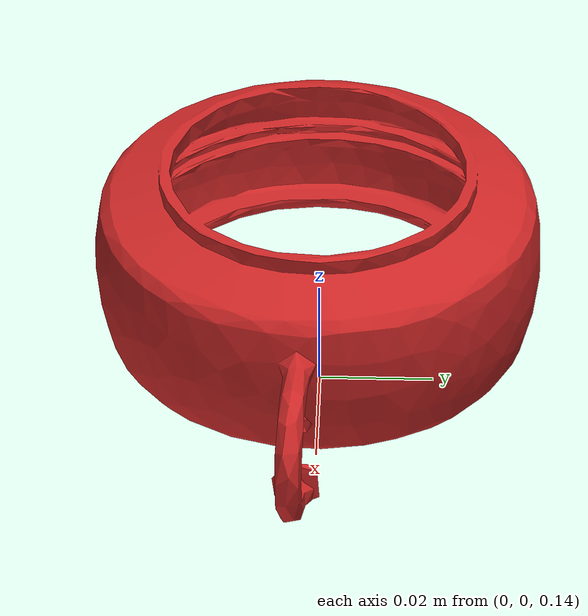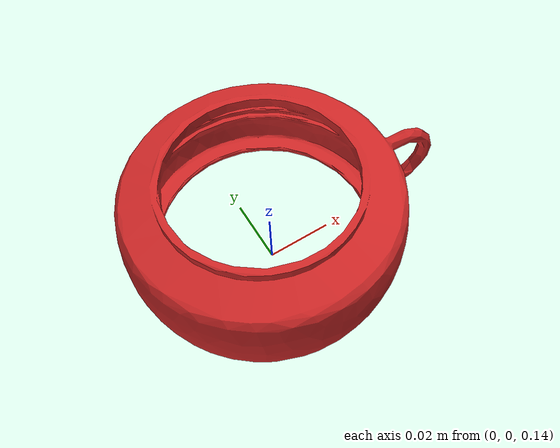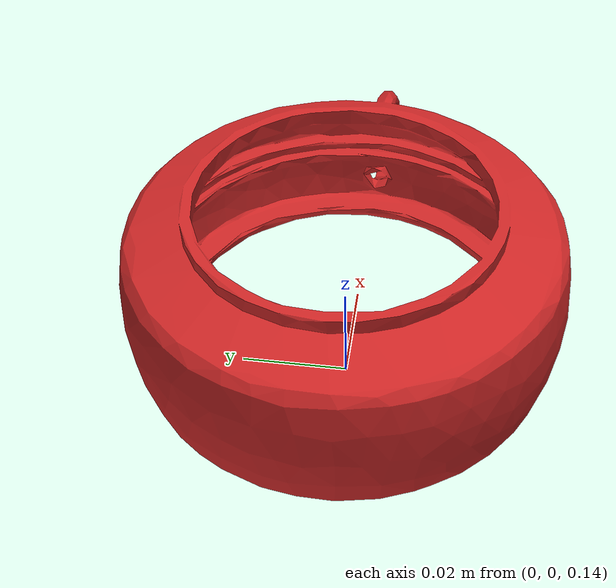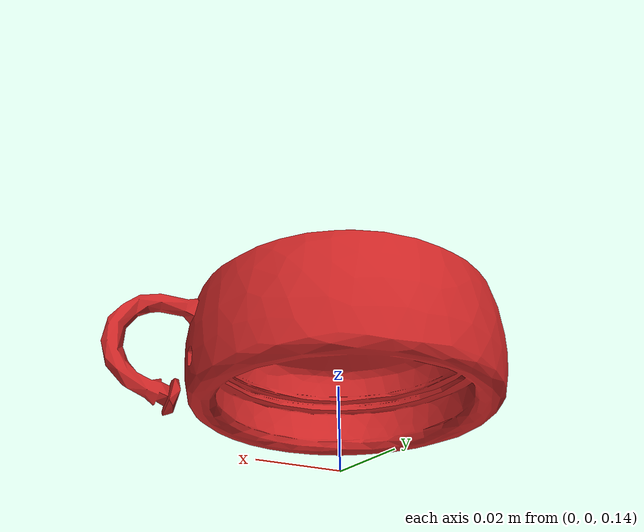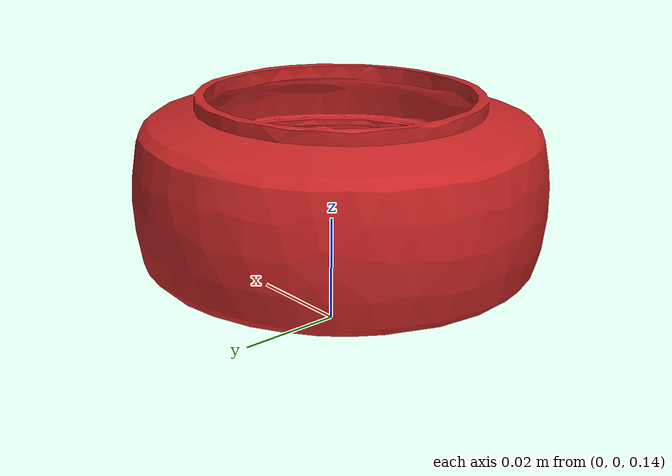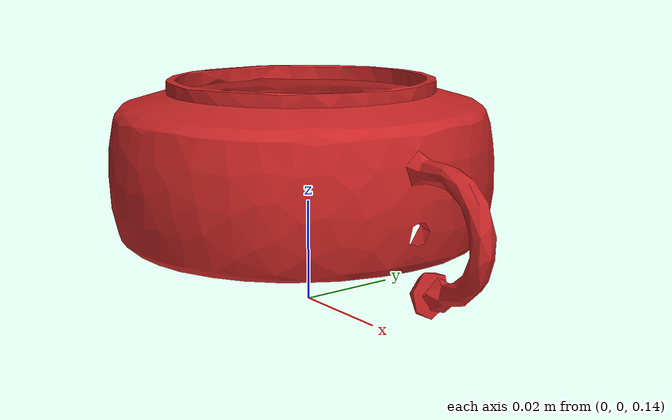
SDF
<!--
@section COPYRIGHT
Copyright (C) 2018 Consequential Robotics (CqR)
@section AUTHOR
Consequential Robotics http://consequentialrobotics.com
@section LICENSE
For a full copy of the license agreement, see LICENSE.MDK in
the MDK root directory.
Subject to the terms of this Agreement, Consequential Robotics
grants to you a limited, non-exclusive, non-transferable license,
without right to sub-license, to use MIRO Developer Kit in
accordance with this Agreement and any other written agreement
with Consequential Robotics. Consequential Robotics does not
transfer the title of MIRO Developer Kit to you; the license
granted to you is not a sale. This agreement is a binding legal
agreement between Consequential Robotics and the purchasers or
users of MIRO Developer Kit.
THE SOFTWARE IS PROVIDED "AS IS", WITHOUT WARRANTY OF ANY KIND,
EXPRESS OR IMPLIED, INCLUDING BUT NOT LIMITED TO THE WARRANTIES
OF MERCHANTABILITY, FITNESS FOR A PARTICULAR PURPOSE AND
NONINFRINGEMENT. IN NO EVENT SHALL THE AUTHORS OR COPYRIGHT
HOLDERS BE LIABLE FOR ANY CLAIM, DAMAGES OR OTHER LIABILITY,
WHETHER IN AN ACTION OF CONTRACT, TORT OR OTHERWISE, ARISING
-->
<?xml version="1.0"?>
<sdf version="1.5">
  <model name="miro_gmbl">
    <link name="gmbl">
      <inertial>
        <pose>-0.002 0 0.171 0 0 0</pose>
        <mass>0.039270</mass>
        <inertia>
          <ixx>0.00002487</ixx>
          <ixy>0.0</ixy>
          <ixz>0.0</ixz>
          <iyy>0.00002487</iyy>
          <iyz>0.0</iyz>
          <izz>0.00004909</izz>
        </inertia>
      </inertial>
      <visual name="visual_collar">
        <pose>0 0 0 0 0 0</pose>
        <geometry>
          <mesh>
            <uri>model://miro_model/meshes/collar.dae</uri>
          </mesh>
        </geometry>
        <material>
          <script>
            <uri>file://media/materials/scripts/gazebo.material</uri>
            <name>Gazebo/Red</name>
          </script>
        </material>
      </visual>
    </link>
  </model>
</sdf>
